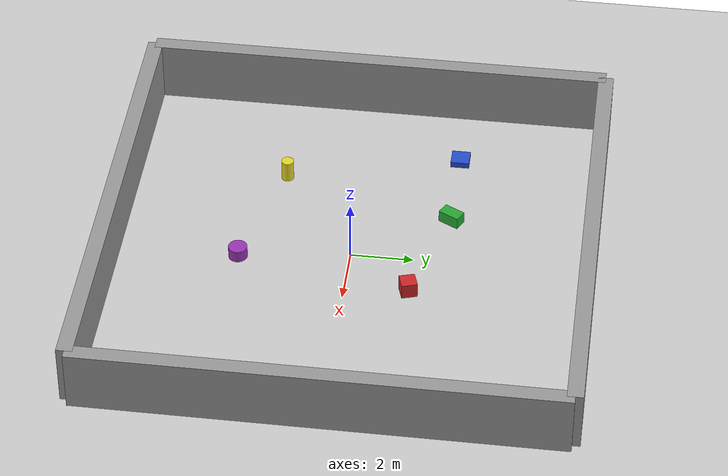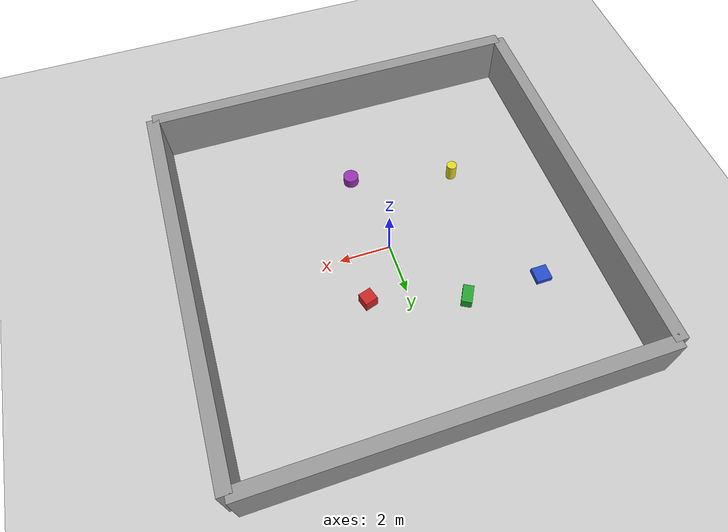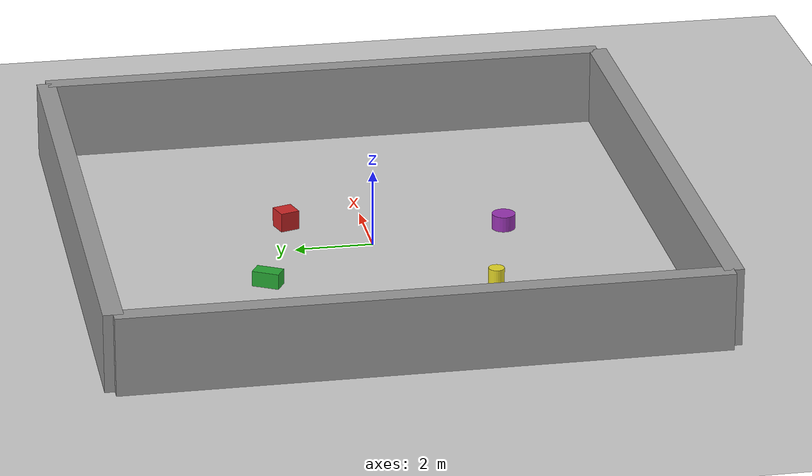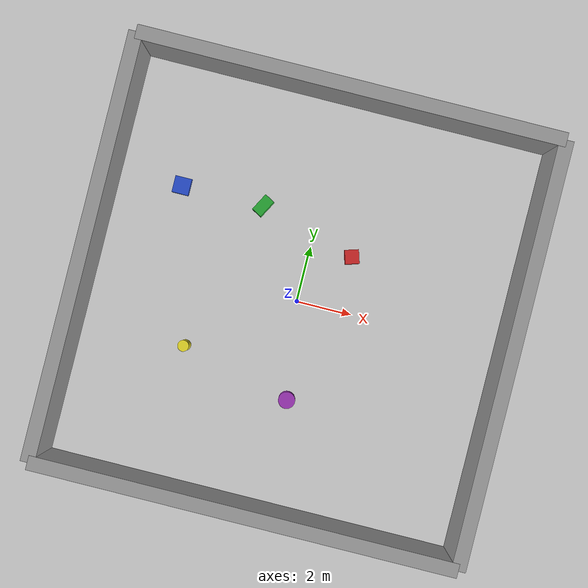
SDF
<?xml version="1.0" ?>
<sdf version="1.6">
  <world name="15x15_enclosure_adjusted_blue_box"> <physics name="1ms" type="ignored">
      <max_step_size>0.001</max_step_size>
      <real_time_factor>1.0</real_time_factor>
    </physics>
    <plugin
      filename="gz-sim-physics-system"
      name="gz::sim::systems::Physics">
    </plugin>
    <plugin
      filename="gz-sim-user-commands-system"
      name="gz::sim::systems::UserCommands">
    </plugin>
    <plugin
      filename="gz-sim-scene-broadcaster-system"
      name="gz::sim::systems::SceneBroadcaster">
    </plugin>
    <plugin
      filename="gz-sim-contact-system"
      name="gz::sim::systems::Contact">
    </plugin>

    <light type="directional" name="sun">
      <cast_shadows>true</cast_shadows>
      <pose>0 0 10 0 0 0</pose>
      <diffuse>0.8 0.8 0.8 1</diffuse>
      <specular>0.2 0.2 0.2 1</specular>
      <attenuation>
        <range>1000</range>
        <constant>0.9</constant>
        <linear>0.01</linear>
        <quadratic>0.001</quadratic>
      </attenuation>
      <direction>-0.5 0.1 -0.9</direction>
    </light>

    <model name="ground_plane">
      <static>true</static>
      <link name="link">
        <collision name="collision">
          <geometry>
            <plane>
              <normal>0 0 1</normal>
              <size>160 160</size> </plane>
          </geometry>
        </collision>
        <visual name="visual">
          <geometry>
            <plane>
              <normal>0 0 1</normal>
              <size>160 160</size> </plane>
          </geometry>
          <material>
            <ambient>0.8 0.8 0.8 1</ambient>
            <diffuse>0.8 0.8 0.8 1</diffuse>
            <specular>0.8 0.8 0.8 1</specular>
          </material>
        </visual>
      </link>
    </model>

    <model name="wall_1">
      <static>true</static>
      <pose>0 7.5 1 0 0 0</pose> <link name="link">
        <collision name="collision"><geometry><box><size>15 0.5 2</size></box></geometry></collision> <visual name="visual"><geometry><box><size>15 0.5 2</size></box></geometry><material><script><uri>file://media/materials/scripts/gazebo.material</uri><name>Gazebo/Grey</name></script></material></visual>
      </link>
    </model>
    <model name="wall_2">
      <static>true</static>
      <pose>0 -7.5 1 0 0 0</pose> <link name="link">
        <collision name="collision"><geometry><box><size>15 0.5 2</size></box></geometry></collision> <visual name="visual"><geometry><box><size>15 0.5 2</size></box></geometry><material><script><uri>file://media/materials/scripts/gazebo.material</uri><name>Gazebo/Grey</name></script></material></visual>
      </link>
    </model>
    <model name="wall_3">
      <static>true</static>
      <pose>7.5 0 1 0 0 1.57079632679</pose> <link name="link">
        <collision name="collision"><geometry><box><size>15 0.5 2</size></box></geometry></collision> <visual name="visual"><geometry><box><size>15 0.5 2</size></box></geometry><material><script><uri>file://media/materials/scripts/gazebo.material</uri><name>Gazebo/Grey</name></script></material></visual>
      </link>
    </model>
    <model name="wall_4">
      <static>true</static>
      <pose>-7.5 0 1 0 0 1.57079632679</pose> <link name="link">
        <collision name="collision"><geometry><box><size>15 0.5 2</size></box></geometry></collision> <visual name="visual"><geometry><box><size>15 0.5 2</size></box></geometry><material><script><uri>file://media/materials/scripts/gazebo.material</uri><name>Gazebo/Grey</name></script></material></visual>
      </link>
    </model>

    <model name="small_box_1">
      <static>true</static>
      <pose>1.5 2.0 0.25 0 0 0.3</pose>
      <link name="link">
        <collision name="collision"><geometry><box><size>0.5 0.5 0.5</size></box></geometry></collision>
        <visual name="visual"><geometry><box><size>0.5 0.5 0.5</size></box></geometry><material><script><uri>file://media/materials/scripts/gazebo.material</uri><name>Gazebo/Red</name></script></material></visual>
      </link>
    </model>

    <model name="small_box_2">
      <static>true</static>
      <pose>-2.0 3.0 0.2 0 0 -0.5</pose>
      <link name="link">
        <collision name="collision"><geometry><box><size>0.4 0.7 0.4</size></box></geometry></collision>
        <visual name="visual"><geometry><box><size>0.4 0.7 0.4</size></box></geometry><material><script><uri>file://media/materials/scripts/gazebo.material</uri><name>Gazebo/Green</name></script></material></visual>
      </link>
    </model>

    <model name="small_box_3">
      <static>true</static>
      <pose>-5.0 3.0 0.1 0 0 0</pose> <link name="link">
        <collision name="collision">
          <geometry>
            <box>
              <size>0.6 0.6 0.2</size> </box>
          </geometry>
        </collision>
        <visual name="visual">
          <geometry>
            <box>
              <size>0.6 0.6 0.2</size>
            </box>
          </geometry>
          <material>
            <script>
              <uri>file://media/materials/scripts/gazebo.material</uri>
              <name>Gazebo/Blue</name>
            </script>
          </material>
        </visual>
      </link>
    </model>

    <model name="small_cylinder_1">
      <static>true</static>
      <pose>-3.5 -2.5 0.35 0 0 0</pose>
      <link name="link">
        <collision name="collision"><geometry><cylinder><radius>0.2</radius><length>0.7</length></cylinder></geometry></collision>
        <visual name="visual"><geometry><cylinder><radius>0.2</radius><length>0.7</length></cylinder></geometry><material><script><uri>file://media/materials/scripts/gazebo.material</uri><name>Gazebo/Yellow</name></script></material></visual>
      </link>
    </model>

    <model name="small_cylinder_2">
      <static>true</static>
      <pose>0.5 -3.5 0.2 0 0 0</pose>
      <link name="link">
        <collision name="collision"><geometry><cylinder><radius>0.3</radius><length>0.4</length></cylinder></geometry></collision>
        <visual name="visual"><geometry><cylinder><radius>0.3</radius><length>0.4</length></cylinder></geometry><material><script><uri>file://media/materials/scripts/gazebo.material</uri><name>Gazebo/Purple</name></script></material></visual>
      </link>
    </model>

  </world>
</sdf>
